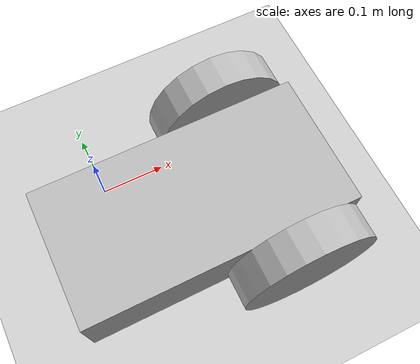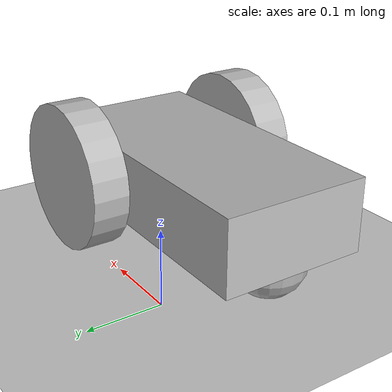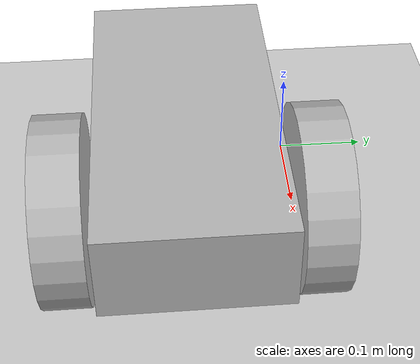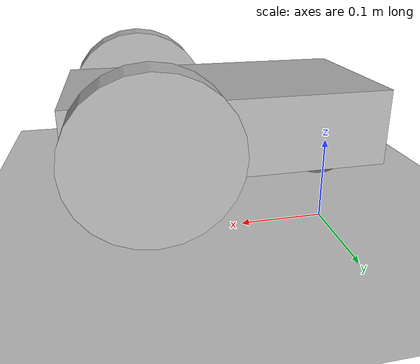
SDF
<sdf version="1.7">
 <world name="default">
  <light name="sun" type="directional">
   <pose>0 0 10 0 -0 0</pose>
   <diffuse>0.8 0.8 0.8 1</diffuse>
   <specular>0.2 0.2 0.2 1</specular>
   <attenuation>
    <range>1000</range>
    <constant>0.9</constant>
    <linear>0.01</linear>
    <quadratic>0.001</quadratic>
   </attenuation>
   <direction>-0.5 0.1 -0.9</direction>
   <spot><inner_angle>0</inner_angle><outer_angle>0</outer_angle><falloff>0</falloff></spot>
  </light>
  <model name="ground_plane">
   <static>1</static>
   <link name="link">
    <collision name="collision">
     <geometry><plane><normal>0 0 1</normal><size>100 100</size></plane></geometry>
     <surface>
      <contact><collide_bitmask>65535</collide_bitmask></contact>
      <friction><ode><mu>100</mu><mu2>50</mu2></ode></friction>
     </surface>
    </collision>
    <visual name="visual">
     <cast_shadows>0</cast_shadows>
     <geometry><plane><normal>0 0 1</normal><size>100 100</size></plane></geometry>
     <material>
      <script><uri>file://media/materials/scripts/gazebo.material</uri><name>Gazebo/Grey</name></script>
     </material>
    </visual>
   </link>
  </model>
  <gravity>0 0 -9.8</gravity>
  <magnetic_field>6e-06 2.3e-05 -4.2e-05</magnetic_field>
  <atmosphere type="adiabatic"/>
  <physics type="ode">
   <max_step_size>0.001</max_step_size>
   <real_time_factor>1</real_time_factor>
   <real_time_update_rate>1000</real_time_update_rate>
  </physics>
  <scene><ambient>0.4 0.4 0.4 1</ambient><background>0.7 0.7 0.7 1</background><shadows>1</shadows></scene>
  <spherical_coordinates>
   <surface_model>EARTH_WGS84</surface_model>
   <latitude_deg>0</latitude_deg>
   <longitude_deg>0</longitude_deg>
   <elevation>0</elevation>
   <heading_deg>0</heading_deg>
  </spherical_coordinates>
  <model name="Turtle1">
   <static>1</static>
   <link name="chassis">
    <pose>0 0 0.1 0 -0 0</pose>
    <collision name="collision"><geometry><box><size>0.4 0.2 0.1</size></box></geometry></collision>
    <visual name="visual"><geometry><box><size>0.4 0.2 0.1</size></box></geometry></visual>
    <collision name="caster_collision">
     <pose>-0.15 0 -0.05 0 -0 0</pose>
     <geometry><sphere><radius>0.05</radius></sphere></geometry>
     <surface><friction><ode><mu>0</mu><mu2>0</mu2><slip1>1</slip1><slip2>1</slip2></ode></friction></surface>
    </collision>
    <visual name="caster_visual">
     <pose>-0.15 0 -0.05 0 -0 0</pose>
     <geometry><sphere><radius>0.05</radius></sphere></geometry>
    </visual>
   </link>
   <link name="left_wheel">
    <pose>0.1 0.13 0.1 -0 1.5707 1.5707</pose>
    <collision name="collision">
     <geometry><cylinder><radius>0.1</radius><length>0.05</length></cylinder></geometry>
    </collision>
    <visual name="visual">
     <geometry><cylinder><radius>0.1</radius><length>0.05</length></cylinder></geometry>
    </visual>
   </link>
   <link name="right_wheel">
    <pose>0.1 -0.13 0.1 -0 1.5707 1.5707</pose>
    <collision name="collision">
     <geometry><cylinder><radius>0.1</radius><length>0.05</length></cylinder></geometry>
    </collision>
    <visual name="visual">
     <geometry><cylinder><radius>0.1</radius><length>0.05</length></cylinder></geometry>
    </visual>
   </link>
   <pose>0.102683 -0.122931 0 0 -0 0</pose>
  </model>
 </world>
</sdf>
